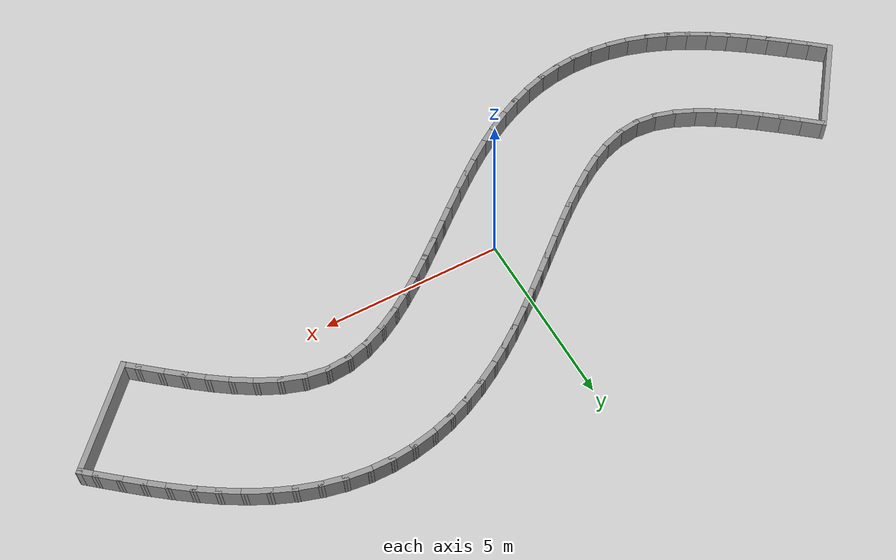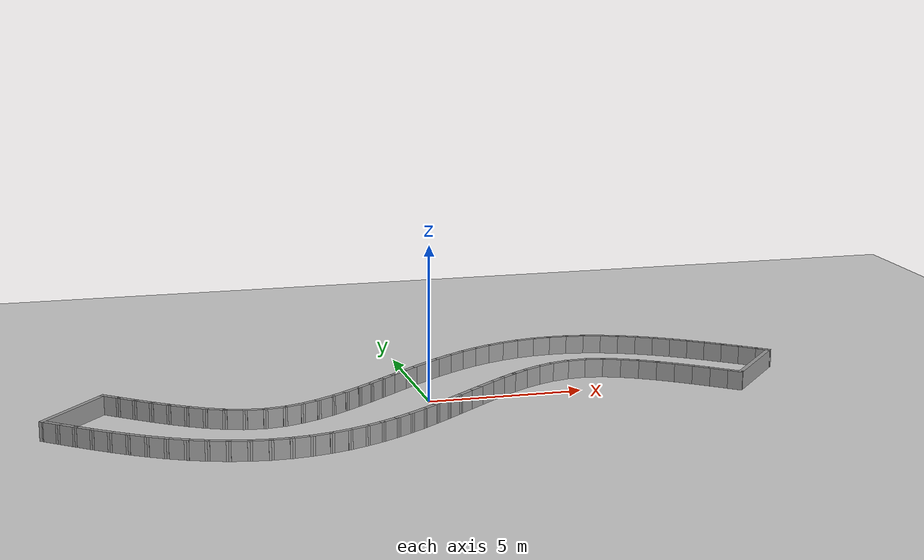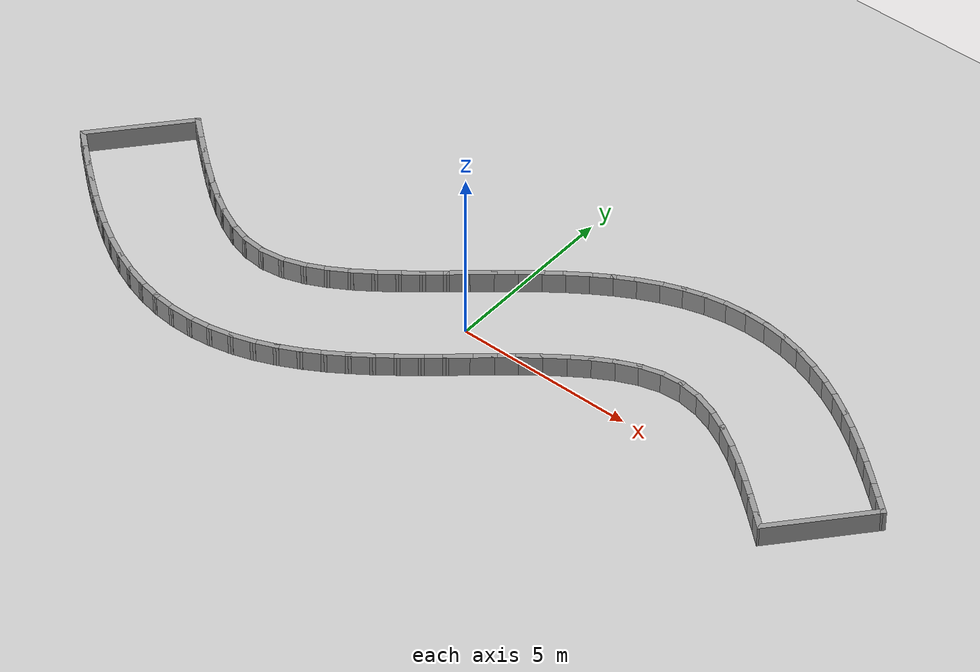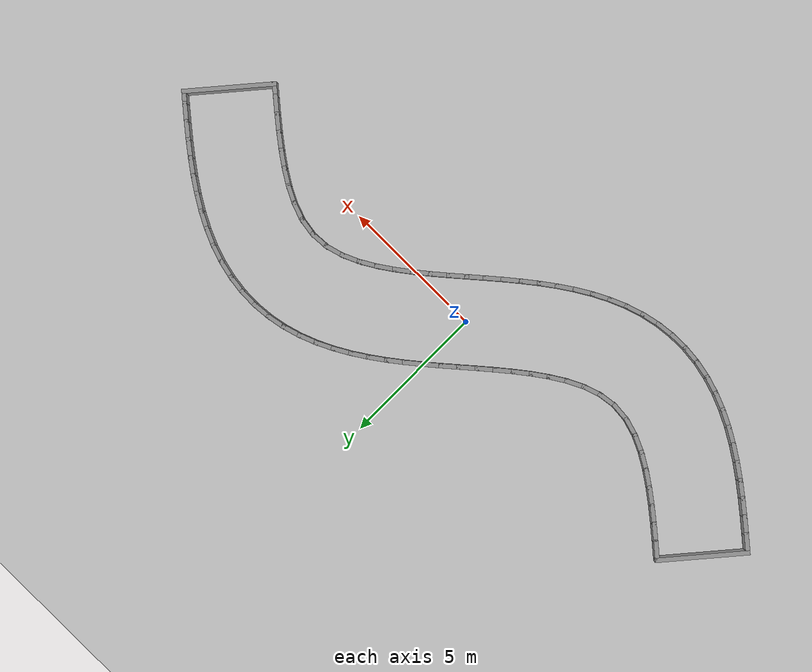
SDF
<?xml version="1.0" ?>
<sdf version='1.7'>
  <world name='default'>
    <plugin name='gazebo_ros_state' filename='libgazebo_ros_state.so'>
      <ros>
        <namespace>/</namespace>
      </ros>
      <update_rate>1000.0</update_rate>
    </plugin>

    <light name='sun' type='directional'>
      <cast_shadows>1</cast_shadows>
      <pose>0 0 10 0 -0 0</pose>
      <diffuse>0.8 0.8 0.8 1</diffuse>
      <specular>0.2 0.2 0.2 1</specular>
      <attenuation>
        <range>1000</range>
        <constant>0.9</constant>
        <linear>0.01</linear>
        <quadratic>0.001</quadratic>
      </attenuation>
      <direction>-0.5 0.1 -0.9</direction>
      <spot>
        <inner_angle>0</inner_angle>
        <outer_angle>0</outer_angle>
        <falloff>0</falloff>
      </spot>
    </light>
    <model name='ground_plane'>
      <static>1</static>
      <link name='link'>
        <collision name='collision'>
          <geometry>
            <plane>
              <normal>0 0 1</normal>
              <size>100 100</size>
            </plane>
          </geometry>
          <surface>
            <friction>
              <ode>
                <mu>100</mu>
                <mu2>50</mu2>
              </ode>
              <torsional>
                <ode/>
              </torsional>
            </friction>
            <contact>
              <ode/>
            </contact>
            <bounce/>
          </surface>
          <max_contacts>10</max_contacts>
        </collision>
        <visual name='visual'>
          <cast_shadows>0</cast_shadows>
          <geometry>
            <plane>
              <normal>0 0 1</normal>
              <size>100 100</size>
            </plane>
          </geometry>
          <material>
            <script>
              <uri>file://media/materials/scripts/gazebo.material</uri>
              <name>Gazebo/Grey</name>
            </script>
          </material>
        </visual>
        <self_collide>0</self_collide>
        <enable_wind>0</enable_wind>
        <kinematic>0</kinematic>
      </link>
    </model>
    <gravity>0 0 -9.8</gravity>
    <magnetic_field>6e-06 2.3e-05 -4.2e-05</magnetic_field>
    <atmosphere type='adiabatic'/>
    <physics type='ode'>
      <max_step_size>0.001</max_step_size>
      <real_time_factor>1</real_time_factor>
      <real_time_update_rate>1000</real_time_update_rate>
    </physics>
    <scene>
      <ambient>0.4 0.4 0.4 1</ambient>
      <background>0.7 0.7 0.7 1</background>
      <shadows>1</shadows>
    </scene>
    <audio>
      <device>default</device>
    </audio>
    <wind/>
    <spherical_coordinates>
      <surface_model>EARTH_WGS84</surface_model>
      <latitude_deg>0</latitude_deg>
      <longitude_deg>0</longitude_deg>
      <elevation>0</elevation>
      <heading_deg>0</heading_deg>
    </spherical_coordinates>
  <model name='s_curve'>
    <pose>0 0 0 0 -0 0</pose>
    <link name='Wall_0'>
      <collision name='Wall_0_Collision'>
        <geometry><box><size>0.7500 0.1500 0.6000</size></box></geometry>
        <pose>0 0 0.3000 0 -0 0</pose>
      </collision>
      <visual name='Wall_0_Visual'>
        <pose>0 0 0.3000 0 -0 0</pose>
        <geometry><box><size>0.7500 0.1500 0.6000</size></box></geometry>
        <material>
          <script>
            <uri>file://media/materials/scripts/gazebo.material</uri>
            <name>Gazebo/Grey</name>
          </script>
          <ambient>1 1 1 1</ambient>
        </material>
      </visual>
      <pose>-9.7960 0.9442 0 0 -0 -0.70700</pose>
    </link>
    <link name='Wall_1'>
      <collision name='Wall_1_Collision'>
        <geometry><box><size>0.7500 0.1500 0.6000</size></box></geometry>
        <pose>0 0 0.3000 0 -0 0</pose>
      </collision>
      <visual name='Wall_1_Visual'>
        <pose>0 0 0.3000 0 -0 0</pose>
        <geometry><box><size>0.7500 0.1500 0.6000</size></box></geometry>
        <material>
          <script>
            <uri>file://media/materials/scripts/gazebo.material</uri>
            <name>Gazebo/Grey</name>
          </script>
          <ambient>1 1 1 1</ambient>
        </material>
      </visual>
      <pose>-9.3381 0.5565 0 0 -0 -0.69818</pose>
    </link>
    <link name='Wall_2'>
      <collision name='Wall_2_Collision'>
        <geometry><box><size>0.7500 0.1500 0.6000</size></box></geometry>
        <pose>0 0 0.3000 0 -0 0</pose>
      </collision>
      <visual name='Wall_2_Visual'>
        <pose>0 0 0.3000 0 -0 0</pose>
        <geometry><box><size>0.7500 0.1500 0.6000</size></box></geometry>
        <material>
          <script>
            <uri>file://media/materials/scripts/gazebo.material</uri>
            <name>Gazebo/Grey</name>
          </script>
          <ambient>1 1 1 1</ambient>
        </material>
      </visual>
      <pose>-8.8749 0.1752 0 0 -0 -0.67941</pose>
    </link>
    <link name='Wall_3'>
      <collision name='Wall_3_Collision'>
        <geometry><box><size>0.7500 0.1500 0.6000</size></box></geometry>
        <pose>0 0 0.3000 0 -0 0</pose>
      </collision>
      <visual name='Wall_3_Visual'>
        <pose>0 0 0.3000 0 -0 0</pose>
        <geometry><box><size>0.7500 0.1500 0.6000</size></box></geometry>
        <material>
          <script>
            <uri>file://media/materials/scripts/gazebo.material</uri>
            <name>Gazebo/Grey</name>
          </script>
          <ambient>1 1 1 1</ambient>
        </material>
      </visual>
      <pose>-8.4025 -0.1945 0 0 -0 -0.64864</pose>
    </link>
    <link name='Wall_4'>
      <collision name='Wall_4_Collision'>
        <geometry><box><size>0.7499 0.1500 0.6000</size></box></geometry>
        <pose>0 0 0.3000 0 -0 0</pose>
      </collision>
      <visual name='Wall_4_Visual'>
        <pose>0 0 0.3000 0 -0 0</pose>
        <geometry><box><size>0.7499 0.1500 0.6000</size></box></geometry>
        <material>
          <script>
            <uri>file://media/materials/scripts/gazebo.material</uri>
            <name>Gazebo/Grey</name>
          </script>
          <ambient>1 1 1 1</ambient>
        </material>
      </visual>
      <pose>-7.9162 -0.5457 0 0 -0 -0.60221</pose>
    </link>
    <link name='Wall_5'>
      <collision name='Wall_5_Collision'>
        <geometry><box><size>0.7498 0.1500 0.6000</size></box></geometry>
        <pose>0 0 0.3000 0 -0 0</pose>
      </collision>
      <visual name='Wall_5_Visual'>
        <pose>0 0 0.3000 0 -0 0</pose>
        <geometry><box><size>0.7498 0.1500 0.6000</size></box></geometry>
        <material>
          <script>
            <uri>file://media/materials/scripts/gazebo.material</uri>
            <name>Gazebo/Grey</name>
          </script>
          <ambient>1 1 1 1</ambient>
        </material>
      </visual>
      <pose>-7.4109 -0.8684 0 0 -0 -0.53440</pose>
    </link>
    <link name='Wall_6'>
      <collision name='Wall_6_Collision'>
        <geometry><box><size>0.7496 0.1500 0.6000</size></box></geometry>
        <pose>0 0 0.3000 0 -0 0</pose>
      </collision>
      <visual name='Wall_6_Visual'>
        <pose>0 0 0.3000 0 -0 0</pose>
        <geometry><box><size>0.7496 0.1500 0.6000</size></box></geometry>
        <material>
          <script>
            <uri>file://media/materials/scripts/gazebo.material</uri>
            <name>Gazebo/Grey</name>
          </script>
          <ambient>1 1 1 1</ambient>
        </material>
      </visual>
      <pose>-6.8809 -1.1475 0 0 -0 -0.43524</pose>
    </link>
    <link name='Wall_7'>
      <collision name='Wall_7_Collision'>
        <geometry><box><size>0.7492 0.1500 0.6000</size></box></geometry>
        <pose>0 0 0.3000 0 -0 0</pose>
      </collision>
      <visual name='Wall_7_Visual'>
        <pose>0 0 0.3000 0 -0 0</pose>
        <geometry><box><size>0.7492 0.1500 0.6000</size></box></geometry>
        <material>
          <script>
            <uri>file://media/materials/scripts/gazebo.material</uri>
            <name>Gazebo/Grey</name>
          </script>
          <ambient>1 1 1 1</ambient>
        </material>
      </visual>
      <pose>-6.3220 -1.3597 0 0 -0 -0.29016</pose>
    </link>
    <link name='Wall_8'>
      <collision name='Wall_8_Collision'>
        <geometry><box><size>0.7487 0.1500 0.6000</size></box></geometry>
        <pose>0 0 0.3000 0 -0 0</pose>
      </collision>
      <visual name='Wall_8_Visual'>
        <pose>0 0 0.3000 0 -0 0</pose>
        <geometry><box><size>0.7487 0.1500 0.6000</size></box></geometry>
        <material>
          <script>
            <uri>file://media/materials/scripts/gazebo.material</uri>
            <name>Gazebo/Grey</name>
          </script>
          <ambient>1 1 1 1</ambient>
        </material>
      </visual>
      <pose>-5.7367 -1.4723 0 0 -0 -0.09011</pose>
    </link>
    <link name='Wall_9'>
      <collision name='Wall_9_Collision'>
        <geometry><box><size>0.7488 0.1500 0.6000</size></box></geometry>
        <pose>0 0 0.3000 0 -0 0</pose>
      </collision>
      <visual name='Wall_9_Visual'>
        <pose>0 0 0.3000 0 -0 0</pose>
        <geometry><box><size>0.7488 0.1500 0.6000</size></box></geometry>
        <material>
          <script>
            <uri>file://media/materials/scripts/gazebo.material</uri>
            <name>Gazebo/Grey</name>
          </script>
          <ambient>1 1 1 1</ambient>
        </material>
      </visual>
      <pose>-5.1419 -1.4590 0 0 -0 0.13498</pose>
    </link>
    <link name='Wall_10'>
      <collision name='Wall_10_Collision'>
        <geometry><box><size>0.7494 0.1500 0.6000</size></box></geometry>
        <pose>0 0 0.3000 0 -0 0</pose>
      </collision>
      <visual name='Wall_10_Visual'>
        <pose>0 0 0.3000 0 -0 0</pose>
        <geometry><box><size>0.7494 0.1500 0.6000</size></box></geometry>
        <material>
          <script>
            <uri>file://media/materials/scripts/gazebo.material</uri>
            <name>Gazebo/Grey</name>
          </script>
          <ambient>1 1 1 1</ambient>
        </material>
      </visual>
      <pose>-4.5611 -1.3232 0 0 -0 0.32439</pose>
    </link>
    <link name='Wall_11'>
      <collision name='Wall_11_Collision'>
        <geometry><box><size>0.7497 0.1500 0.6000</size></box></geometry>
        <pose>0 0 0.3000 0 -0 0</pose>
      </collision>
      <visual name='Wall_11_Visual'>
        <pose>0 0 0.3000 0 -0 0</pose>
        <geometry><box><size>0.7497 0.1500 0.6000</size></box></geometry>
        <material>
          <script>
            <uri>file://media/materials/scripts/gazebo.material</uri>
            <name>Gazebo/Grey</name>
          </script>
          <ambient>1 1 1 1</ambient>
        </material>
      </visual>
      <pose>-4.0082 -1.0949 0 0 -0 0.45873</pose>
    </link>
    <link name='Wall_12'>
      <collision name='Wall_12_Collision'>
        <geometry><box><size>0.7499 0.1500 0.6000</size></box></geometry>
        <pose>0 0 0.3000 0 -0 0</pose>
      </collision>
      <visual name='Wall_12_Visual'>
        <pose>0 0 0.3000 0 -0 0</pose>
        <geometry><box><size>0.7499 0.1500 0.6000</size></box></geometry>
        <material>
          <script>
            <uri>file://media/materials/scripts/gazebo.material</uri>
            <name>Gazebo/Grey</name>
          </script>
          <ambient>1 1 1 1</ambient>
        </material>
      </visual>
      <pose>-3.4837 -0.8052 0 0 -0 0.55042</pose>
    </link>
    <link name='Wall_13'>
      <collision name='Wall_13_Collision'>
        <geometry><box><size>0.7499 0.1500 0.6000</size></box></geometry>
        <pose>0 0 0.3000 0 -0 0</pose>
      </collision>
      <visual name='Wall_13_Visual'>
        <pose>0 0 0.3000 0 -0 0</pose>
        <geometry><box><size>0.7499 0.1500 0.6000</size></box></geometry>
        <material>
          <script>
            <uri>file://media/materials/scripts/gazebo.material</uri>
            <name>Gazebo/Grey</name>
          </script>
          <ambient>1 1 1 1</ambient>
        </material>
      </visual>
      <pose>-2.9828 -0.4757 0 0 -0 0.61327</pose>
    </link>
    <link name='Wall_14'>
      <collision name='Wall_14_Collision'>
        <geometry><box><size>0.7500 0.1500 0.6000</size></box></geometry>
        <pose>0 0 0.3000 0 -0 0</pose>
      </collision>
      <visual name='Wall_14_Visual'>
        <pose>0 0 0.3000 0 -0 0</pose>
        <geometry><box><size>0.7500 0.1500 0.6000</size></box></geometry>
        <material>
          <script>
            <uri>file://media/materials/scripts/gazebo.material</uri>
            <name>Gazebo/Grey</name>
          </script>
          <ambient>1 1 1 1</ambient>
        </material>
      </visual>
      <pose>-2.4998 -0.1201 0 0 -0 0.65608</pose>
    </link>
    <link name='Wall_15'>
      <collision name='Wall_15_Collision'>
        <geometry><box><size>0.7500 0.1500 0.6000</size></box></geometry>
        <pose>0 0 0.3000 0 -0 0</pose>
      </collision>
      <visual name='Wall_15_Visual'>
        <pose>0 0 0.3000 0 -0 0</pose>
        <geometry><box><size>0.7500 0.1500 0.6000</size></box></geometry>
        <material>
          <script>
            <uri>file://media/materials/scripts/gazebo.material</uri>
            <name>Gazebo/Grey</name>
          </script>
          <ambient>1 1 1 1</ambient>
        </material>
      </visual>
      <pose>-2.0296 0.2525 0 0 -0 0.68415</pose>
    </link>
    <link name='Wall_16'>
      <collision name='Wall_16_Collision'>
        <geometry><box><size>0.7500 0.1500 0.6000</size></box></geometry>
        <pose>0 0 0.3000 0 -0 0</pose>
      </collision>
      <visual name='Wall_16_Visual'>
        <pose>0 0 0.3000 0 -0 0</pose>
        <geometry><box><size>0.7500 0.1500 0.6000</size></box></geometry>
        <material>
          <script>
            <uri>file://media/materials/scripts/gazebo.material</uri>
            <name>Gazebo/Grey</name>
          </script>
          <ambient>1 1 1 1</ambient>
        </material>
      </visual>
      <pose>-1.5678 0.6356 0 0 -0 0.70075</pose>
    </link>
    <link name='Wall_17'>
      <collision name='Wall_17_Collision'>
        <geometry><box><size>0.7500 0.1500 0.6000</size></box></geometry>
        <pose>0 0 0.3000 0 -0 0</pose>
      </collision>
      <visual name='Wall_17_Visual'>
        <pose>0 0 0.3000 0 -0 0</pose>
        <geometry><box><size>0.7500 0.1500 0.6000</size></box></geometry>
        <material>
          <script>
            <uri>file://media/materials/scripts/gazebo.material</uri>
            <name>Gazebo/Grey</name>
          </script>
          <ambient>1 1 1 1</ambient>
        </material>
      </visual>
      <pose>-1.1106 1.0240 0 0 -0 0.70769</pose>
    </link>
    <link name='Wall_18'>
      <collision name='Wall_18_Collision'>
        <geometry><box><size>0.7500 0.1500 0.6000</size></box></geometry>
        <pose>0 0 0.3000 0 -0 0</pose>
      </collision>
      <visual name='Wall_18_Visual'>
        <pose>0 0 0.3000 0 -0 0</pose>
        <geometry><box><size>0.7500 0.1500 0.6000</size></box></geometry>
        <material>
          <script>
            <uri>file://media/materials/scripts/gazebo.material</uri>
            <name>Gazebo/Grey</name>
          </script>
          <ambient>1 1 1 1</ambient>
        </material>
      </visual>
      <pose>-0.6543 1.4137 0 0 -0 0.70603</pose>
    </link>
    <link name='Wall_19'>
      <collision name='Wall_19_Collision'>
        <geometry><box><size>0.7500 0.1500 0.6000</size></box></geometry>
        <pose>0 0 0.3000 0 -0 0</pose>
      </collision>
      <visual name='Wall_19_Visual'>
        <pose>0 0 0.3000 0 -0 0</pose>
        <geometry><box><size>0.7500 0.1500 0.6000</size></box></geometry>
        <material>
          <script>
            <uri>file://media/materials/scripts/gazebo.material</uri>
            <name>Gazebo/Grey</name>
          </script>
          <ambient>1 1 1 1</ambient>
        </material>
      </visual>
      <pose>-0.1959 1.8007 0 0 -0 0.69618</pose>
    </link>
    <link name='Wall_20'>
      <collision name='Wall_20_Collision'>
        <geometry><box><size>0.7500 0.1500 0.6000</size></box></geometry>
        <pose>0 0 0.3000 0 -0 0</pose>
      </collision>
      <visual name='Wall_20_Visual'>
        <pose>0 0 0.3000 0 -0 0</pose>
        <geometry><box><size>0.7500 0.1500 0.6000</size></box></geometry>
        <material>
          <script>
            <uri>file://media/materials/scripts/gazebo.material</uri>
            <name>Gazebo/Grey</name>
          </script>
          <ambient>1 1 1 1</ambient>
        </material>
      </visual>
      <pose>0.2679 2.1813 0 0 -0 0.67818</pose>
    </link>
    <link name='Wall_21'>
      <collision name='Wall_21_Collision'>
        <geometry><box><size>0.7500 0.1500 0.6000</size></box></geometry>
        <pose>0 0 0.3000 0 -0 0</pose>
      </collision>
      <visual name='Wall_21_Visual'>
        <pose>0 0 0.3000 0 -0 0</pose>
        <geometry><box><size>0.7500 0.1500 0.6000</size></box></geometry>
        <material>
          <script>
            <uri>file://media/materials/scripts/gazebo.material</uri>
            <name>Gazebo/Grey</name>
          </script>
          <ambient>1 1 1 1</ambient>
        </material>
      </visual>
      <pose>0.7401 2.5515 0 0 -0 0.65172</pose>
    </link>
    <link name='Wall_22'>
      <collision name='Wall_22_Collision'>
        <geometry><box><size>0.7500 0.1500 0.6000</size></box></geometry>
        <pose>0 0 0.3000 0 -0 0</pose>
      </collision>
      <visual name='Wall_22_Visual'>
        <pose>0 0 0.3000 0 -0 0</pose>
        <geometry><box><size>0.7500 0.1500 0.6000</size></box></geometry>
        <material>
          <script>
            <uri>file://media/materials/scripts/gazebo.material</uri>
            <name>Gazebo/Grey</name>
          </script>
          <ambient>1 1 1 1</ambient>
        </material>
      </visual>
      <pose>1.2234 2.9068 0 0 -0 0.61620</pose>
    </link>
    <link name='Wall_23'>
      <collision name='Wall_23_Collision'>
        <geometry><box><size>0.7499 0.1500 0.6000</size></box></geometry>
        <pose>0 0 0.3000 0 -0 0</pose>
      </collision>
      <visual name='Wall_23_Visual'>
        <pose>0 0 0.3000 0 -0 0</pose>
        <geometry><box><size>0.7499 0.1500 0.6000</size></box></geometry>
        <material>
          <script>
            <uri>file://media/materials/scripts/gazebo.material</uri>
            <name>Gazebo/Grey</name>
          </script>
          <ambient>1 1 1 1</ambient>
        </material>
      </visual>
      <pose>1.7206 3.2423 0 0 -0 0.57087</pose>
    </link>
    <link name='Wall_24'>
      <collision name='Wall_24_Collision'>
        <geometry><box><size>0.7499 0.1500 0.6000</size></box></geometry>
        <pose>0 0 0.3000 0 -0 0</pose>
      </collision>
      <visual name='Wall_24_Visual'>
        <pose>0 0 0.3000 0 -0 0</pose>
        <geometry><box><size>0.7499 0.1500 0.6000</size></box></geometry>
        <material>
          <script>
            <uri>file://media/materials/scripts/gazebo.material</uri>
            <name>Gazebo/Grey</name>
          </script>
          <ambient>1 1 1 1</ambient>
        </material>
      </visual>
      <pose>2.2341 3.5521 0 0 -0 0.51484</pose>
    </link>
    <link name='Wall_25'>
      <collision name='Wall_25_Collision'>
        <geometry><box><size>0.7499 0.1500 0.6000</size></box></geometry>
        <pose>0 0 0.3000 0 -0 0</pose>
      </collision>
      <visual name='Wall_25_Visual'>
        <pose>0 0 0.3000 0 -0 0</pose>
        <geometry><box><size>0.7499 0.1500 0.6000</size></box></geometry>
        <material>
          <script>
            <uri>file://media/materials/scripts/gazebo.material</uri>
            <name>Gazebo/Grey</name>
          </script>
          <ambient>1 1 1 1</ambient>
        </material>
      </visual>
      <pose>2.7655 3.8296 0 0 -0 0.44776</pose>
    </link>
    <link name='Wall_26'>
      <collision name='Wall_26_Collision'>
        <geometry><box><size>0.7498 0.1500 0.6000</size></box></geometry>
        <pose>0 0 0.3000 0 -0 0</pose>
      </collision>
      <visual name='Wall_26_Visual'>
        <pose>0 0 0.3000 0 -0 0</pose>
        <geometry><box><size>0.7498 0.1500 0.6000</size></box></geometry>
        <material>
          <script>
            <uri>file://media/materials/scripts/gazebo.material</uri>
            <name>Gazebo/Grey</name>
          </script>
          <ambient>1 1 1 1</ambient>
        </material>
      </visual>
      <pose>3.3155 4.0678 0 0 -0 0.36944</pose>
    </link>
    <link name='Wall_27'>
      <collision name='Wall_27_Collision'>
        <geometry><box><size>0.7498 0.1500 0.6000</size></box></geometry>
        <pose>0 0 0.3000 0 -0 0</pose>
      </collision>
      <visual name='Wall_27_Visual'>
        <pose>0 0 0.3000 0 -0 0</pose>
        <geometry><box><size>0.7498 0.1500 0.6000</size></box></geometry>
        <material>
          <script>
            <uri>file://media/materials/scripts/gazebo.material</uri>
            <name>Gazebo/Grey</name>
          </script>
          <ambient>1 1 1 1</ambient>
        </material>
      </visual>
      <pose>3.8834 4.2591 0 0 -0 0.28055</pose>
    </link>
    <link name='Wall_28'>
      <collision name='Wall_28_Collision'>
        <geometry><box><size>0.7497 0.1500 0.6000</size></box></geometry>
        <pose>0 0 0.3000 0 -0 0</pose>
      </collision>
      <visual name='Wall_28_Visual'>
        <pose>0 0 0.3000 0 -0 0</pose>
        <geometry><box><size>0.7497 0.1500 0.6000</size></box></geometry>
        <material>
          <script>
            <uri>file://media/materials/scripts/gazebo.material</uri>
            <name>Gazebo/Grey</name>
          </script>
          <ambient>1 1 1 1</ambient>
        </material>
      </visual>
      <pose>4.4664 4.3966 0 0 -0 0.18274</pose>
    </link>
    <link name='Wall_29'>
      <collision name='Wall_29_Collision'>
        <geometry><box><size>0.7497 0.1500 0.6000</size></box></geometry>
        <pose>0 0 0.3000 0 -0 0</pose>
      </collision>
      <visual name='Wall_29_Visual'>
        <pose>0 0 0.3000 0 -0 0</pose>
        <geometry><box><size>0.7497 0.1500 0.6000</size></box></geometry>
        <material>
          <script>
            <uri>file://media/materials/scripts/gazebo.material</uri>
            <name>Gazebo/Grey</name>
          </script>
          <ambient>1 1 1 1</ambient>
        </material>
      </visual>
      <pose>5.0602 4.4747 0 0 -0 0.07858</pose>
    </link>
    <link name='Wall_30'>
      <collision name='Wall_30_Collision'>
        <geometry><box><size>0.7497 0.1500 0.6000</size></box></geometry>
        <pose>0 0 0.3000 0 -0 0</pose>
      </collision>
      <visual name='Wall_30_Visual'>
        <pose>0 0 0.3000 0 -0 0</pose>
        <geometry><box><size>0.7497 0.1500 0.6000</size></box></geometry>
        <material>
          <script>
            <uri>file://media/materials/scripts/gazebo.material</uri>
            <name>Gazebo/Grey</name>
          </script>
          <ambient>1 1 1 1</ambient>
        </material>
      </visual>
      <pose>5.6589 4.4896 0 0 -0 -0.02853</pose>
    </link>
    <link name='Wall_31'>
      <collision name='Wall_31_Collision'>
        <geometry><box><size>0.7497 0.1500 0.6000</size></box></geometry>
        <pose>0 0 0.3000 0 -0 0</pose>
      </collision>
      <visual name='Wall_31_Visual'>
        <pose>0 0 0.3000 0 -0 0</pose>
        <geometry><box><size>0.7497 0.1500 0.6000</size></box></geometry>
        <material>
          <script>
            <uri>file://media/materials/scripts/gazebo.material</uri>
            <name>Gazebo/Grey</name>
          </script>
          <ambient>1 1 1 1</ambient>
        </material>
      </visual>
      <pose>6.2558 4.4409 0 0 -0 -0.13439</pose>
    </link>
    <link name='Wall_32'>
      <collision name='Wall_32_Collision'>
        <geometry><box><size>0.7498 0.1500 0.6000</size></box></geometry>
        <pose>0 0 0.3000 0 -0 0</pose>
      </collision>
      <visual name='Wall_32_Visual'>
        <pose>0 0 0.3000 0 -0 0</pose>
        <geometry><box><size>0.7498 0.1500 0.6000</size></box></geometry>
        <material>
          <script>
            <uri>file://media/materials/scripts/gazebo.material</uri>
            <name>Gazebo/Grey</name>
          </script>
          <ambient>1 1 1 1</ambient>
        </material>
      </visual>
      <pose>6.8445 4.3308 0 0 -0 -0.23554</pose>
    </link>
    <link name='Wall_33'>
      <collision name='Wall_33_Collision'>
        <geometry><box><size>0.7498 0.1500 0.6000</size></box></geometry>
        <pose>0 0 0.3000 0 -0 0</pose>
      </collision>
      <visual name='Wall_33_Visual'>
        <pose>0 0 0.3000 0 -0 0</pose>
        <geometry><box><size>0.7498 0.1500 0.6000</size></box></geometry>
        <material>
          <script>
            <uri>file://media/materials/scripts/gazebo.material</uri>
            <name>Gazebo/Grey</name>
          </script>
          <ambient>1 1 1 1</ambient>
        </material>
      </visual>
      <pose>7.4200 4.1639 0 0 -0 -0.32890</pose>
    </link>
    <link name='Wall_34'>
      <collision name='Wall_34_Collision'>
        <geometry><box><size>0.7498 0.1500 0.6000</size></box></geometry>
        <pose>0 0 0.3000 0 -0 0</pose>
      </collision>
      <visual name='Wall_34_Visual'>
        <pose>0 0 0.3000 0 -0 0</pose>
        <geometry><box><size>0.7498 0.1500 0.6000</size></box></geometry>
        <material>
          <script>
            <uri>file://media/materials/scripts/gazebo.material</uri>
            <name>Gazebo/Grey</name>
          </script>
          <ambient>1 1 1 1</ambient>
        </material>
      </visual>
      <pose>7.9786 3.9468 0 0 -0 -0.41234</pose>
    </link>
    <link name='Wall_35'>
      <collision name='Wall_35_Collision'>
        <geometry><box><size>0.7499 0.1500 0.6000</size></box></geometry>
        <pose>0 0 0.3000 0 -0 0</pose>
      </collision>
      <visual name='Wall_35_Visual'>
        <pose>0 0 0.3000 0 -0 0</pose>
        <geometry><box><size>0.7499 0.1500 0.6000</size></box></geometry>
        <material>
          <script>
            <uri>file://media/materials/scripts/gazebo.material</uri>
            <name>Gazebo/Grey</name>
          </script>
          <ambient>1 1 1 1</ambient>
        </material>
      </visual>
      <pose>8.5187 3.6869 0 0 -0 -0.48485</pose>
    </link>
    <link name='Wall_36'>
      <collision name='Wall_36_Collision'>
        <geometry><box><size>0.7499 0.1500 0.6000</size></box></geometry>
        <pose>0 0 0.3000 0 -0 0</pose>
      </collision>
      <visual name='Wall_36_Visual'>
        <pose>0 0 0.3000 0 -0 0</pose>
        <geometry><box><size>0.7499 0.1500 0.6000</size></box></geometry>
        <material>
          <script>
            <uri>file://media/materials/scripts/gazebo.material</uri>
            <name>Gazebo/Grey</name>
          </script>
          <ambient>1 1 1 1</ambient>
        </material>
      </visual>
      <pose>9.0405 3.3913 0 0 -0 -0.54594</pose>
    </link>
    <link name='Wall_37'>
      <collision name='Wall_37_Collision'>
        <geometry><box><size>0.7499 0.1500 0.6000</size></box></geometry>
        <pose>0 0 0.3000 0 -0 0</pose>
      </collision>
      <visual name='Wall_37_Visual'>
        <pose>0 0 0.3000 0 -0 0</pose>
        <geometry><box><size>0.7499 0.1500 0.6000</size></box></geometry>
        <material>
          <script>
            <uri>file://media/materials/scripts/gazebo.material</uri>
            <name>Gazebo/Grey</name>
          </script>
          <ambient>1 1 1 1</ambient>
        </material>
      </visual>
      <pose>9.5450 3.0671 0 0 -0 -0.59615</pose>
    </link>
    <link name='Wall_38'>
      <collision name='Wall_38_Collision'>
        <geometry><box><size>0.7500 0.1500 0.6000</size></box></geometry>
        <pose>0 0 0.3000 0 -0 0</pose>
      </collision>
      <visual name='Wall_38_Visual'>
        <pose>0 0 0.3000 0 -0 0</pose>
        <geometry><box><size>0.7500 0.1500 0.6000</size></box></geometry>
        <material>
          <script>
            <uri>file://media/materials/scripts/gazebo.material</uri>
            <name>Gazebo/Grey</name>
          </script>
          <ambient>1 1 1 1</ambient>
        </material>
      </visual>
      <pose>10.0346 2.7205 0 0 -0 -0.63619</pose>
    </link>
    <link name='Wall_39'>
      <collision name='Wall_39_Collision'>
        <geometry><box><size>0.7500 0.1500 0.6000</size></box></geometry>
        <pose>0 0 0.3000 0 -0 0</pose>
      </collision>
      <visual name='Wall_39_Visual'>
        <pose>0 0 0.3000 0 -0 0</pose>
        <geometry><box><size>0.7500 0.1500 0.6000</size></box></geometry>
        <material>
          <script>
            <uri>file://media/materials/scripts/gazebo.material</uri>
            <name>Gazebo/Grey</name>
          </script>
          <ambient>1 1 1 1</ambient>
        </material>
      </visual>
      <pose>10.5116 2.3567 0 0 -0 -0.66683</pose>
    </link>
    <link name='Wall_40'>
      <collision name='Wall_40_Collision'>
        <geometry><box><size>0.7500 0.1500 0.6000</size></box></geometry>
        <pose>0 0 0.3000 0 -0 0</pose>
      </collision>
      <visual name='Wall_40_Visual'>
        <pose>0 0 0.3000 0 -0 0</pose>
        <geometry><box><size>0.7500 0.1500 0.6000</size></box></geometry>
        <material>
          <script>
            <uri>file://media/materials/scripts/gazebo.material</uri>
            <name>Gazebo/Grey</name>
          </script>
          <ambient>1 1 1 1</ambient>
        </material>
      </visual>
      <pose>10.9789 1.9805 0 0 -0 -0.68877</pose>
    </link>
    <link name='Wall_41'>
      <collision name='Wall_41_Collision'>
        <geometry><box><size>0.7500 0.1500 0.6000</size></box></geometry>
        <pose>0 0 0.3000 0 -0 0</pose>
      </collision>
      <visual name='Wall_41_Visual'>
        <pose>0 0 0.3000 0 -0 0</pose>
        <geometry><box><size>0.7500 0.1500 0.6000</size></box></geometry>
        <material>
          <script>
            <uri>file://media/materials/scripts/gazebo.material</uri>
            <name>Gazebo/Grey</name>
          </script>
          <ambient>1 1 1 1</ambient>
        </material>
      </visual>
      <pose>11.4395 1.5960 0 0 -0 -0.70242</pose>
    </link>
    <link name='Wall_42'>
      <collision name='Wall_42_Collision'>
        <geometry><box><size>0.5546 0.1500 0.6000</size></box></geometry>
        <pose>0 0 0.3000 0 -0 0</pose>
      </collision>
      <visual name='Wall_42_Visual'>
        <pose>0 0 0.3000 0 -0 0</pose>
        <geometry><box><size>0.5546 0.1500 0.6000</size></box></geometry>
        <material>
          <script>
            <uri>file://media/materials/scripts/gazebo.material</uri>
            <name>Gazebo/Grey</name>
          </script>
          <ambient>1 1 1 1</ambient>
        </material>
      </visual>
      <pose>11.8222 1.2706 0 0 -0 -0.70779</pose>
    </link>
    <link name='Wall_43'>
      <collision name='Wall_43_Collision'>
        <geometry><box><size>0.7500 0.1500 0.6000</size></box></geometry>
        <pose>0 0 0.3000 0 -0 0</pose>
      </collision>
      <visual name='Wall_43_Visual'>
        <pose>0 0 0.3000 0 -0 0</pose>
        <geometry><box><size>0.7500 0.1500 0.6000</size></box></geometry>
        <material>
          <script>
            <uri>file://media/materials/scripts/gazebo.material</uri>
            <name>Gazebo/Grey</name>
          </script>
          <ambient>1 1 1 1</ambient>
        </material>
      </visual>
      <pose>-11.7479 -1.3340 0 0 -0 -0.70705</pose>
    </link>
    <link name='Wall_44'>
      <collision name='Wall_44_Collision'>
        <geometry><box><size>0.7500 0.1500 0.6000</size></box></geometry>
        <pose>0 0 0.3000 0 -0 0</pose>
      </collision>
      <visual name='Wall_44_Visual'>
        <pose>0 0 0.3000 0 -0 0</pose>
        <geometry><box><size>0.7500 0.1500 0.6000</size></box></geometry>
        <material>
          <script>
            <uri>file://media/materials/scripts/gazebo.material</uri>
            <name>Gazebo/Grey</name>
          </script>
          <ambient>1 1 1 1</ambient>
        </material>
      </visual>
      <pose>-11.2901 -1.7219 0 0 -0 -0.69887</pose>
    </link>
    <link name='Wall_45'>
      <collision name='Wall_45_Collision'>
        <geometry><box><size>0.7500 0.1500 0.6000</size></box></geometry>
        <pose>0 0 0.3000 0 -0 0</pose>
      </collision>
      <visual name='Wall_45_Visual'>
        <pose>0 0 0.3000 0 -0 0</pose>
        <geometry><box><size>0.7500 0.1500 0.6000</size></box></geometry>
        <material>
          <script>
            <uri>file://media/materials/scripts/gazebo.material</uri>
            <name>Gazebo/Grey</name>
          </script>
          <ambient>1 1 1 1</ambient>
        </material>
      </visual>
      <pose>-10.8276 -2.1041 0 0 -0 -0.68254</pose>
    </link>
    <link name='Wall_46'>
      <collision name='Wall_46_Collision'>
        <geometry><box><size>0.7500 0.1500 0.6000</size></box></geometry>
        <pose>0 0 0.3000 0 -0 0</pose>
      </collision>
      <visual name='Wall_46_Visual'>
        <pose>0 0 0.3000 0 -0 0</pose>
        <geometry><box><size>0.7500 0.1500 0.6000</size></box></geometry>
        <material>
          <script>
            <uri>file://media/materials/scripts/gazebo.material</uri>
            <name>Gazebo/Grey</name>
          </script>
          <ambient>1 1 1 1</ambient>
        </material>
      </visual>
      <pose>-10.3575 -2.4767 0 0 -0 -0.65784</pose>
    </link>
    <link name='Wall_47'>
      <collision name='Wall_47_Collision'>
        <geometry><box><size>0.7500 0.1500 0.6000</size></box></geometry>
        <pose>0 0 0.3000 0 -0 0</pose>
      </collision>
      <visual name='Wall_47_Visual'>
        <pose>0 0 0.3000 0 -0 0</pose>
        <geometry><box><size>0.7500 0.1500 0.6000</size></box></geometry>
        <material>
          <script>
            <uri>file://media/materials/scripts/gazebo.material</uri>
            <name>Gazebo/Grey</name>
          </script>
          <ambient>1 1 1 1</ambient>
        </material>
      </visual>
      <pose>-9.8767 -2.8355 0 0 -0 -0.62423</pose>
    </link>
    <link name='Wall_48'>
      <collision name='Wall_48_Collision'>
        <geometry><box><size>0.7499 0.1500 0.6000</size></box></geometry>
        <pose>0 0 0.3000 0 -0 0</pose>
      </collision>
      <visual name='Wall_48_Visual'>
        <pose>0 0 0.3000 0 -0 0</pose>
        <geometry><box><size>0.7499 0.1500 0.6000</size></box></geometry>
        <material>
          <script>
            <uri>file://media/materials/scripts/gazebo.material</uri>
            <name>Gazebo/Grey</name>
          </script>
          <ambient>1 1 1 1</ambient>
        </material>
      </visual>
      <pose>-9.3825 -3.1754 0 0 -0 -0.58097</pose>
    </link>
    <link name='Wall_49'>
      <collision name='Wall_49_Collision'>
        <geometry><box><size>0.7499 0.1500 0.6000</size></box></geometry>
        <pose>0 0 0.3000 0 -0 0</pose>
      </collision>
      <visual name='Wall_49_Visual'>
        <pose>0 0 0.3000 0 -0 0</pose>
        <geometry><box><size>0.7499 0.1500 0.6000</size></box></geometry>
        <material>
          <script>
            <uri>file://media/materials/scripts/gazebo.material</uri>
            <name>Gazebo/Grey</name>
          </script>
          <ambient>1 1 1 1</ambient>
        </material>
      </visual>
      <pose>-8.8725 -3.4910 0 0 -0 -0.52729</pose>
    </link>
    <link name='Wall_50'>
      <collision name='Wall_50_Collision'>
        <geometry><box><size>0.7499 0.1500 0.6000</size></box></geometry>
        <pose>0 0 0.3000 0 -0 0</pose>
      </collision>
      <visual name='Wall_50_Visual'>
        <pose>0 0 0.3000 0 -0 0</pose>
        <geometry><box><size>0.7499 0.1500 0.6000</size></box></geometry>
        <material>
          <script>
            <uri>file://media/materials/scripts/gazebo.material</uri>
            <name>Gazebo/Grey</name>
          </script>
          <ambient>1 1 1 1</ambient>
        </material>
      </visual>
      <pose>-8.3449 -3.7758 0 0 -0 -0.46243</pose>
    </link>
    <link name='Wall_51'>
      <collision name='Wall_51_Collision'>
        <geometry><box><size>0.7498 0.1500 0.6000</size></box></geometry>
        <pose>0 0 0.3000 0 -0 0</pose>
      </collision>
      <visual name='Wall_51_Visual'>
        <pose>0 0 0.3000 0 -0 0</pose>
        <geometry><box><size>0.7498 0.1500 0.6000</size></box></geometry>
        <material>
          <script>
            <uri>file://media/materials/scripts/gazebo.material</uri>
            <name>Gazebo/Grey</name>
          </script>
          <ambient>1 1 1 1</ambient>
        </material>
      </visual>
      <pose>-7.7987 -4.0226 0 0 -0 -0.38636</pose>
    </link>
    <link name='Wall_52'>
      <collision name='Wall_52_Collision'>
        <geometry><box><size>0.7498 0.1500 0.6000</size></box></geometry>
        <pose>0 0 0.3000 0 -0 0</pose>
      </collision>
      <visual name='Wall_52_Visual'>
        <pose>0 0 0.3000 0 -0 0</pose>
        <geometry><box><size>0.7498 0.1500 0.6000</size></box></geometry>
        <material>
          <script>
            <uri>file://media/materials/scripts/gazebo.material</uri>
            <name>Gazebo/Grey</name>
          </script>
          <ambient>1 1 1 1</ambient>
        </material>
      </visual>
      <pose>-7.2343 -4.2241 0 0 -0 -0.29952</pose>
    </link>
    <link name='Wall_53'>
      <collision name='Wall_53_Collision'>
        <geometry><box><size>0.7497 0.1500 0.6000</size></box></geometry>
        <pose>0 0 0.3000 0 -0 0</pose>
      </collision>
      <visual name='Wall_53_Visual'>
        <pose>0 0 0.3000 0 -0 0</pose>
        <geometry><box><size>0.7497 0.1500 0.6000</size></box></geometry>
        <material>
          <script>
            <uri>file://media/materials/scripts/gazebo.material</uri>
            <name>Gazebo/Grey</name>
          </script>
          <ambient>1 1 1 1</ambient>
        </material>
      </visual>
      <pose>-6.6541 -4.3731 0 0 -0 -0.20334</pose>
    </link>
    <link name='Wall_54'>
      <collision name='Wall_54_Collision'>
        <geometry><box><size>0.7497 0.1500 0.6000</size></box></geometry>
        <pose>0 0 0.3000 0 -0 0</pose>
      </collision>
      <visual name='Wall_54_Visual'>
        <pose>0 0 0.3000 0 -0 0</pose>
        <geometry><box><size>0.7497 0.1500 0.6000</size></box></geometry>
        <material>
          <script>
            <uri>file://media/materials/scripts/gazebo.material</uri>
            <name>Gazebo/Grey</name>
          </script>
          <ambient>1 1 1 1</ambient>
        </material>
      </visual>
      <pose>-6.0620 -4.4637 0 0 -0 -0.10029</pose>
    </link>
    <link name='Wall_55'>
      <collision name='Wall_55_Collision'>
        <geometry><box><size>0.7497 0.1500 0.6000</size></box></geometry>
        <pose>0 0 0.3000 0 -0 0</pose>
      </collision>
      <visual name='Wall_55_Visual'>
        <pose>0 0 0.3000 0 -0 0</pose>
        <geometry><box><size>0.7497 0.1500 0.6000</size></box></geometry>
        <material>
          <script>
            <uri>file://media/materials/scripts/gazebo.material</uri>
            <name>Gazebo/Grey</name>
          </script>
          <ambient>1 1 1 1</ambient>
        </material>
      </visual>
      <pose>-5.4638 -4.4918 0 0 -0 0.00644</pose>
    </link>
    <link name='Wall_56'>
      <collision name='Wall_56_Collision'>
        <geometry><box><size>0.7497 0.1500 0.6000</size></box></geometry>
        <pose>0 0 0.3000 0 -0 0</pose>
      </collision>
      <visual name='Wall_56_Visual'>
        <pose>0 0 0.3000 0 -0 0</pose>
        <geometry><box><size>0.7497 0.1500 0.6000</size></box></geometry>
        <material>
          <script>
            <uri>file://media/materials/scripts/gazebo.material</uri>
            <name>Gazebo/Grey</name>
          </script>
          <ambient>1 1 1 1</ambient>
        </material>
      </visual>
      <pose>-4.8660 -4.4560 0 0 -0 0.11302</pose>
    </link>
    <link name='Wall_57'>
      <collision name='Wall_57_Collision'>
        <geometry><box><size>0.7497 0.1500 0.6000</size></box></geometry>
        <pose>0 0 0.3000 0 -0 0</pose>
      </collision>
      <visual name='Wall_57_Visual'>
        <pose>0 0 0.3000 0 -0 0</pose>
        <geometry><box><size>0.7497 0.1500 0.6000</size></box></geometry>
        <material>
          <script>
            <uri>file://media/materials/scripts/gazebo.material</uri>
            <name>Gazebo/Grey</name>
          </script>
          <ambient>1 1 1 1</ambient>
        </material>
      </visual>
      <pose>-4.2751 -4.3581 0 0 -0 0.21540</pose>
    </link>
    <link name='Wall_58'>
      <collision name='Wall_58_Collision'>
        <geometry><box><size>0.7498 0.1500 0.6000</size></box></geometry>
        <pose>0 0 0.3000 0 -0 0</pose>
      </collision>
      <visual name='Wall_58_Visual'>
        <pose>0 0 0.3000 0 -0 0</pose>
        <geometry><box><size>0.7498 0.1500 0.6000</size></box></geometry>
        <material>
          <script>
            <uri>file://media/materials/scripts/gazebo.material</uri>
            <name>Gazebo/Grey</name>
          </script>
          <ambient>1 1 1 1</ambient>
        </material>
      </visual>
      <pose>-3.6966 -4.2024 0 0 -0 0.31056</pose>
    </link>
    <link name='Wall_59'>
      <collision name='Wall_59_Collision'>
        <geometry><box><size>0.7498 0.1500 0.6000</size></box></geometry>
        <pose>0 0 0.3000 0 -0 0</pose>
      </collision>
      <visual name='Wall_59_Visual'>
        <pose>0 0 0.3000 0 -0 0</pose>
        <geometry><box><size>0.7498 0.1500 0.6000</size></box></geometry>
        <material>
          <script>
            <uri>file://media/materials/scripts/gazebo.material</uri>
            <name>Gazebo/Grey</name>
          </script>
          <ambient>1 1 1 1</ambient>
        </material>
      </visual>
      <pose>-3.1344 -3.9950 0 0 -0 0.39614</pose>
    </link>
    <link name='Wall_60'>
      <collision name='Wall_60_Collision'>
        <geometry><box><size>0.7499 0.1500 0.6000</size></box></geometry>
        <pose>0 0 0.3000 0 -0 0</pose>
      </collision>
      <visual name='Wall_60_Visual'>
        <pose>0 0 0.3000 0 -0 0</pose>
        <geometry><box><size>0.7499 0.1500 0.6000</size></box></geometry>
        <material>
          <script>
            <uri>file://media/materials/scripts/gazebo.material</uri>
            <name>Gazebo/Grey</name>
          </script>
          <ambient>1 1 1 1</ambient>
        </material>
      </visual>
      <pose>-2.5904 -3.7432 0 0 -0 0.47084</pose>
    </link>
    <link name='Wall_61'>
      <collision name='Wall_61_Collision'>
        <geometry><box><size>0.7499 0.1500 0.6000</size></box></geometry>
        <pose>0 0 0.3000 0 -0 0</pose>
      </collision>
      <visual name='Wall_61_Visual'>
        <pose>0 0 0.3000 0 -0 0</pose>
        <geometry><box><size>0.7499 0.1500 0.6000</size></box></geometry>
        <material>
          <script>
            <uri>file://media/materials/scripts/gazebo.material</uri>
            <name>Gazebo/Grey</name>
          </script>
          <ambient>1 1 1 1</ambient>
        </material>
      </visual>
      <pose>-2.0650 -3.4544 0 0 -0 0.53433</pose>
    </link>
    <link name='Wall_62'>
      <collision name='Wall_62_Collision'>
        <geometry><box><size>0.7499 0.1500 0.6000</size></box></geometry>
        <pose>0 0 0.3000 0 -0 0</pose>
      </collision>
      <visual name='Wall_62_Visual'>
        <pose>0 0 0.3000 0 -0 0</pose>
        <geometry><box><size>0.7499 0.1500 0.6000</size></box></geometry>
        <material>
          <script>
            <uri>file://media/materials/scripts/gazebo.material</uri>
            <name>Gazebo/Grey</name>
          </script>
          <ambient>1 1 1 1</ambient>
        </material>
      </visual>
      <pose>-1.5570 -3.1356 0 0 -0 0.58674</pose>
    </link>
    <link name='Wall_63'>
      <collision name='Wall_63_Collision'>
        <geometry><box><size>0.7500 0.1500 0.6000</size></box></geometry>
        <pose>0 0 0.3000 0 -0 0</pose>
      </collision>
      <visual name='Wall_63_Visual'>
        <pose>0 0 0.3000 0 -0 0</pose>
        <geometry><box><size>0.7500 0.1500 0.6000</size></box></geometry>
        <material>
          <script>
            <uri>file://media/materials/scripts/gazebo.material</uri>
            <name>Gazebo/Grey</name>
          </script>
          <ambient>1 1 1 1</ambient>
        </material>
      </visual>
      <pose>-1.0646 -2.7931 0 0 -0 0.62879</pose>
    </link>
    <link name='Wall_64'>
      <collision name='Wall_64_Collision'>
        <geometry><box><size>0.7500 0.1500 0.6000</size></box></geometry>
        <pose>0 0 0.3000 0 -0 0</pose>
      </collision>
      <visual name='Wall_64_Visual'>
        <pose>0 0 0.3000 0 -0 0</pose>
        <geometry><box><size>0.7500 0.1500 0.6000</size></box></geometry>
        <material>
          <script>
            <uri>file://media/materials/scripts/gazebo.material</uri>
            <name>Gazebo/Grey</name>
          </script>
          <ambient>1 1 1 1</ambient>
        </material>
      </visual>
      <pose>-0.5852 -2.4324 0 0 -0 0.66129</pose>
    </link>
    <link name='Wall_65'>
      <collision name='Wall_65_Collision'>
        <geometry><box><size>0.7500 0.1500 0.6000</size></box></geometry>
        <pose>0 0 0.3000 0 -0 0</pose>
      </collision>
      <visual name='Wall_65_Visual'>
        <pose>0 0 0.3000 0 -0 0</pose>
        <geometry><box><size>0.7500 0.1500 0.6000</size></box></geometry>
        <material>
          <script>
            <uri>file://media/materials/scripts/gazebo.material</uri>
            <name>Gazebo/Grey</name>
          </script>
          <ambient>1 1 1 1</ambient>
        </material>
      </visual>
      <pose>-0.1162 -2.0584 0 0 -0 0.68495</pose>
    </link>
    <link name='Wall_66'>
      <collision name='Wall_66_Collision'>
        <geometry><box><size>0.7500 0.1500 0.6000</size></box></geometry>
        <pose>0 0 0.3000 0 -0 0</pose>
      </collision>
      <visual name='Wall_66_Visual'>
        <pose>0 0 0.3000 0 -0 0</pose>
        <geometry><box><size>0.7500 0.1500 0.6000</size></box></geometry>
        <material>
          <script>
            <uri>file://media/materials/scripts/gazebo.material</uri>
            <name>Gazebo/Grey</name>
          </script>
          <ambient>1 1 1 1</ambient>
        </material>
      </visual>
      <pose>0.3456 -1.6752 0 0 -0 0.70028</pose>
    </link>
    <link name='Wall_67'>
      <collision name='Wall_67_Collision'>
        <geometry><box><size>0.7500 0.1500 0.6000</size></box></geometry>
        <pose>0 0 0.3000 0 -0 0</pose>
      </collision>
      <visual name='Wall_67_Visual'>
        <pose>0 0 0.3000 0 -0 0</pose>
        <geometry><box><size>0.7500 0.1500 0.6000</size></box></geometry>
        <material>
          <script>
            <uri>file://media/materials/scripts/gazebo.material</uri>
            <name>Gazebo/Grey</name>
          </script>
          <ambient>1 1 1 1</ambient>
        </material>
      </visual>
      <pose>0.8030 -1.2869 0 0 -0 0.70749</pose>
    </link>
    <link name='Wall_68'>
      <collision name='Wall_68_Collision'>
        <geometry><box><size>0.7500 0.1500 0.6000</size></box></geometry>
        <pose>0 0 0.3000 0 -0 0</pose>
      </collision>
      <visual name='Wall_68_Visual'>
        <pose>0 0 0.3000 0 -0 0</pose>
        <geometry><box><size>0.7500 0.1500 0.6000</size></box></geometry>
        <material>
          <script>
            <uri>file://media/materials/scripts/gazebo.material</uri>
            <name>Gazebo/Grey</name>
          </script>
          <ambient>1 1 1 1</ambient>
        </material>
      </visual>
      <pose>1.2592 -0.8972 0 0 -0 0.70641</pose>
    </link>
    <link name='Wall_69'>
      <collision name='Wall_69_Collision'>
        <geometry><box><size>0.7500 0.1500 0.6000</size></box></geometry>
        <pose>0 0 0.3000 0 -0 0</pose>
      </collision>
      <visual name='Wall_69_Visual'>
        <pose>0 0 0.3000 0 -0 0</pose>
        <geometry><box><size>0.7500 0.1500 0.6000</size></box></geometry>
        <material>
          <script>
            <uri>file://media/materials/scripts/gazebo.material</uri>
            <name>Gazebo/Grey</name>
          </script>
          <ambient>1 1 1 1</ambient>
        </material>
      </visual>
      <pose>1.7175 -0.5100 0 0 -0 0.69649</pose>
    </link>
    <link name='Wall_70'>
      <collision name='Wall_70_Collision'>
        <geometry><box><size>0.7500 0.1500 0.6000</size></box></geometry>
        <pose>0 0 0.3000 0 -0 0</pose>
      </collision>
      <visual name='Wall_70_Visual'>
        <pose>0 0 0.3000 0 -0 0</pose>
        <geometry><box><size>0.7500 0.1500 0.6000</size></box></geometry>
        <material>
          <script>
            <uri>file://media/materials/scripts/gazebo.material</uri>
            <name>Gazebo/Grey</name>
          </script>
          <ambient>1 1 1 1</ambient>
        </material>
      </visual>
      <pose>2.1816 -0.1298 0 0 -0 0.67639</pose>
    </link>
    <link name='Wall_71'>
      <collision name='Wall_71_Collision'>
        <geometry><box><size>0.7500 0.1500 0.6000</size></box></geometry>
        <pose>0 0 0.3000 0 -0 0</pose>
      </collision>
      <visual name='Wall_71_Visual'>
        <pose>0 0 0.3000 0 -0 0</pose>
        <geometry><box><size>0.7500 0.1500 0.6000</size></box></geometry>
        <material>
          <script>
            <uri>file://media/materials/scripts/gazebo.material</uri>
            <name>Gazebo/Grey</name>
          </script>
          <ambient>1 1 1 1</ambient>
        </material>
      </visual>
      <pose>2.6554 0.2381 0 0 -0 0.64391</pose>
    </link>
    <link name='Wall_72'>
      <collision name='Wall_72_Collision'>
        <geometry><box><size>0.7499 0.1500 0.6000</size></box></geometry>
        <pose>0 0 0.3000 0 -0 0</pose>
      </collision>
      <visual name='Wall_72_Visual'>
        <pose>0 0 0.3000 0 -0 0</pose>
        <geometry><box><size>0.7499 0.1500 0.6000</size></box></geometry>
        <material>
          <script>
            <uri>file://media/materials/scripts/gazebo.material</uri>
            <name>Gazebo/Grey</name>
          </script>
          <ambient>1 1 1 1</ambient>
        </material>
      </visual>
      <pose>3.1437 0.5864 0 0 -0 0.59536</pose>
    </link>
    <link name='Wall_73'>
      <collision name='Wall_73_Collision'>
        <geometry><box><size>0.7498 0.1500 0.6000</size></box></geometry>
        <pose>0 0 0.3000 0 -0 0</pose>
      </collision>
      <visual name='Wall_73_Visual'>
        <pose>0 0 0.3000 0 -0 0</pose>
        <geometry><box><size>0.7498 0.1500 0.6000</size></box></geometry>
        <material>
          <script>
            <uri>file://media/materials/scripts/gazebo.material</uri>
            <name>Gazebo/Grey</name>
          </script>
          <ambient>1 1 1 1</ambient>
        </material>
      </visual>
      <pose>3.6517 0.9047 0 0 -0 0.52429</pose>
    </link>
    <link name='Wall_74'>
      <collision name='Wall_74_Collision'>
        <geometry><box><size>0.7496 0.1500 0.6000</size></box></geometry>
        <pose>0 0 0.3000 0 -0 0</pose>
      </collision>
      <visual name='Wall_74_Visual'>
        <pose>0 0 0.3000 0 -0 0</pose>
        <geometry><box><size>0.7496 0.1500 0.6000</size></box></geometry>
        <material>
          <script>
            <uri>file://media/materials/scripts/gazebo.material</uri>
            <name>Gazebo/Grey</name>
          </script>
          <ambient>1 1 1 1</ambient>
        </material>
      </visual>
      <pose>4.1850 1.1773 0 0 -0 0.42047</pose>
    </link>
    <link name='Wall_75'>
      <collision name='Wall_75_Collision'>
        <geometry><box><size>0.7492 0.1500 0.6000</size></box></geometry>
        <pose>0 0 0.3000 0 -0 0</pose>
      </collision>
      <visual name='Wall_75_Visual'>
        <pose>0 0 0.3000 0 -0 0</pose>
        <geometry><box><size>0.7492 0.1500 0.6000</size></box></geometry>
        <material>
          <script>
            <uri>file://media/materials/scripts/gazebo.material</uri>
            <name>Gazebo/Grey</name>
          </script>
          <ambient>1 1 1 1</ambient>
        </material>
      </visual>
      <pose>4.7475 1.3792 0 0 -0 0.26888</pose>
    </link>
    <link name='Wall_76'>
      <collision name='Wall_76_Collision'>
        <geometry><box><size>0.7487 0.1500 0.6000</size></box></geometry>
        <pose>0 0 0.3000 0 -0 0</pose>
      </collision>
      <visual name='Wall_76_Visual'>
        <pose>0 0 0.3000 0 -0 0</pose>
        <geometry><box><size>0.7487 0.1500 0.6000</size></box></geometry>
        <material>
          <script>
            <uri>file://media/materials/scripts/gazebo.material</uri>
            <name>Gazebo/Grey</name>
          </script>
          <ambient>1 1 1 1</ambient>
        </material>
      </visual>
      <pose>5.3351 1.4777 0 0 -0 0.06301</pose>
    </link>
    <link name='Wall_77'>
      <collision name='Wall_77_Collision'>
        <geometry><box><size>0.7489 0.1500 0.6000</size></box></geometry>
        <pose>0 0 0.3000 0 -0 0</pose>
      </collision>
      <visual name='Wall_77_Visual'>
        <pose>0 0 0.3000 0 -0 0</pose>
        <geometry><box><size>0.7489 0.1500 0.6000</size></box></geometry>
        <material>
          <script>
            <uri>file://media/materials/scripts/gazebo.material</uri>
            <name>Gazebo/Grey</name>
          </script>
          <ambient>1 1 1 1</ambient>
        </material>
      </visual>
      <pose>5.9294 1.4486 0 0 -0 -0.16064</pose>
    </link>
    <link name='Wall_78'>
      <collision name='Wall_78_Collision'>
        <geometry><box><size>0.7494 0.1500 0.6000</size></box></geometry>
        <pose>0 0 0.3000 0 -0 0</pose>
      </collision>
      <visual name='Wall_78_Visual'>
        <pose>0 0 0.3000 0 -0 0</pose>
        <geometry><box><size>0.7494 0.1500 0.6000</size></box></geometry>
        <material>
          <script>
            <uri>file://media/materials/scripts/gazebo.material</uri>
            <name>Gazebo/Grey</name>
          </script>
          <ambient>1 1 1 1</ambient>
        </material>
      </visual>
      <pose>6.5072 1.2998 0 0 -0 -0.34338</pose>
    </link>
    <link name='Wall_79'>
      <collision name='Wall_79_Collision'>
        <geometry><box><size>0.7497 0.1500 0.6000</size></box></geometry>
        <pose>0 0 0.3000 0 -0 0</pose>
      </collision>
      <visual name='Wall_79_Visual'>
        <pose>0 0 0.3000 0 -0 0</pose>
        <geometry><box><size>0.7497 0.1500 0.6000</size></box></geometry>
        <material>
          <script>
            <uri>file://media/materials/scripts/gazebo.material</uri>
            <name>Gazebo/Grey</name>
          </script>
          <ambient>1 1 1 1</ambient>
        </material>
      </visual>
      <pose>7.0565 1.0626 0 0 -0 -0.47179</pose>
    </link>
    <link name='Wall_80'>
      <collision name='Wall_80_Collision'>
        <geometry><box><size>0.7499 0.1500 0.6000</size></box></geometry>
        <pose>0 0 0.3000 0 -0 0</pose>
      </collision>
      <visual name='Wall_80_Visual'>
        <pose>0 0 0.3000 0 -0 0</pose>
        <geometry><box><size>0.7499 0.1500 0.6000</size></box></geometry>
        <material>
          <script>
            <uri>file://media/materials/scripts/gazebo.material</uri>
            <name>Gazebo/Grey</name>
          </script>
          <ambient>1 1 1 1</ambient>
        </material>
      </visual>
      <pose>7.5779 0.7672 0 0 -0 -0.55934</pose>
    </link>
    <link name='Wall_81'>
      <collision name='Wall_81_Collision'>
        <geometry><box><size>0.7499 0.1500 0.6000</size></box></geometry>
        <pose>0 0 0.3000 0 -0 0</pose>
      </collision>
      <visual name='Wall_81_Visual'>
        <pose>0 0 0.3000 0 -0 0</pose>
        <geometry><box><size>0.7499 0.1500 0.6000</size></box></geometry>
        <material>
          <script>
            <uri>file://media/materials/scripts/gazebo.material</uri>
            <name>Gazebo/Grey</name>
          </script>
          <ambient>1 1 1 1</ambient>
        </material>
      </visual>
      <pose>8.0763 0.4339 0 0 -0 -0.61935</pose>
    </link>
    <link name='Wall_82'>
      <collision name='Wall_82_Collision'>
        <geometry><box><size>0.7500 0.1500 0.6000</size></box></geometry>
        <pose>0 0 0.3000 0 -0 0</pose>
      </collision>
      <visual name='Wall_82_Visual'>
        <pose>0 0 0.3000 0 -0 0</pose>
        <geometry><box><size>0.7500 0.1500 0.6000</size></box></geometry>
        <material>
          <script>
            <uri>file://media/materials/scripts/gazebo.material</uri>
            <name>Gazebo/Grey</name>
          </script>
          <ambient>1 1 1 1</ambient>
        </material>
      </visual>
      <pose>8.5576 0.0758 0 0 -0 -0.66014</pose>
    </link>
    <link name='Wall_83'>
      <collision name='Wall_83_Collision'>
        <geometry><box><size>0.7500 0.1500 0.6000</size></box></geometry>
        <pose>0 0 0.3000 0 -0 0</pose>
      </collision>
      <visual name='Wall_83_Visual'>
        <pose>0 0 0.3000 0 -0 0</pose>
        <geometry><box><size>0.7500 0.1500 0.6000</size></box></geometry>
        <material>
          <script>
            <uri>file://media/materials/scripts/gazebo.material</uri>
            <name>Gazebo/Grey</name>
          </script>
          <ambient>1 1 1 1</ambient>
        </material>
      </visual>
      <pose>9.0265 -0.2983 0 0 -0 -0.68672</pose>
    </link>
    <link name='Wall_84'>
      <collision name='Wall_84_Collision'>
        <geometry><box><size>0.7500 0.1500 0.6000</size></box></geometry>
        <pose>0 0 0.3000 0 -0 0</pose>
      </collision>
      <visual name='Wall_84_Visual'>
        <pose>0 0 0.3000 0 -0 0</pose>
        <geometry><box><size>0.7500 0.1500 0.6000</size></box></geometry>
        <material>
          <script>
            <uri>file://media/materials/scripts/gazebo.material</uri>
            <name>Gazebo/Grey</name>
          </script>
          <ambient>1 1 1 1</ambient>
        </material>
      </visual>
      <pose>9.4876 -0.6823 0 0 -0 -0.70207</pose>
    </link>
    <link name='Wall_85'>
      <collision name='Wall_85_Collision'>
        <geometry><box><size>0.5546 0.1500 0.6000</size></box></geometry>
        <pose>0 0 0.3000 0 -0 0</pose>
      </collision>
      <visual name='Wall_85_Visual'>
        <pose>0 0 0.3000 0 -0 0</pose>
        <geometry><box><size>0.5546 0.1500 0.6000</size></box></geometry>
        <material>
          <script>
            <uri>file://media/materials/scripts/gazebo.material</uri>
            <name>Gazebo/Grey</name>
          </script>
          <ambient>1 1 1 1</ambient>
        </material>
      </visual>
      <pose>9.8703 -1.0076 0 0 -0 -0.70778</pose>
    </link>
    <link name='Wall_86'>
      <collision name='Wall_86_Collision'>
        <geometry><box><size>3.1500 0.1500 0.6000</size></box></geometry>
        <pose>0 0 0.3000 0 -0 0</pose>
      </collision>
      <visual name='Wall_86_Visual'>
        <pose>0 0 0.3000 0 -0 0</pose>
        <geometry><box><size>3.1500 0.1500 0.6000</size></box></geometry>
        <material>
          <script>
            <uri>file://media/materials/scripts/gazebo.material</uri>
            <name>Gazebo/Grey</name>
          </script>
          <ambient>1 1 1 1</ambient>
        </material>
      </visual>
      <pose>-11.0000 -0.0000 0 0 -0 0.86239</pose>
    </link>
    <link name='Wall_87'>
      <collision name='Wall_87_Collision'>
        <geometry><box><size>3.1500 0.1500 0.6000</size></box></geometry>
        <pose>0 0 0.3000 0 -0 0</pose>
      </collision>
      <visual name='Wall_87_Visual'>
        <pose>0 0 0.3000 0 -0 0</pose>
        <geometry><box><size>3.1500 0.1500 0.6000</size></box></geometry>
        <material>
          <script>
            <uri>file://media/materials/scripts/gazebo.material</uri>
            <name>Gazebo/Grey</name>
          </script>
          <ambient>1 1 1 1</ambient>
        </material>
      </visual>
      <pose>11.0000 -0.0000 0 0 -0 -2.27921</pose>
    </link>
    <static>1</static>
  </model>
  </world>
</sdf>
